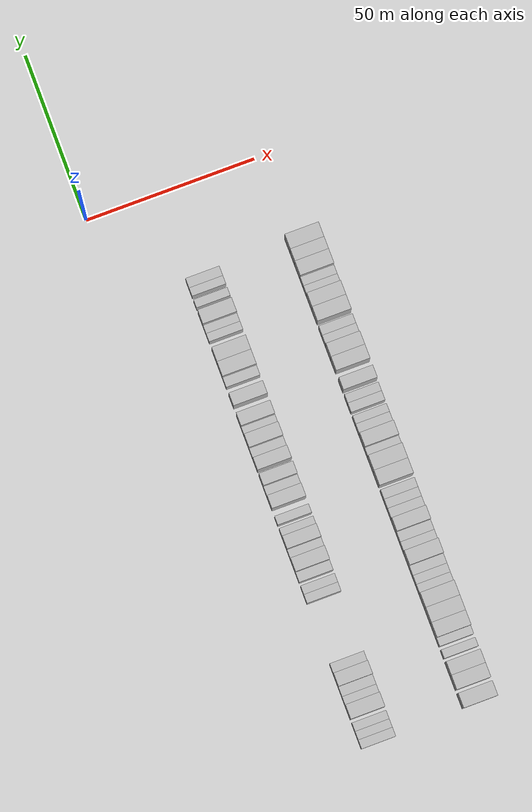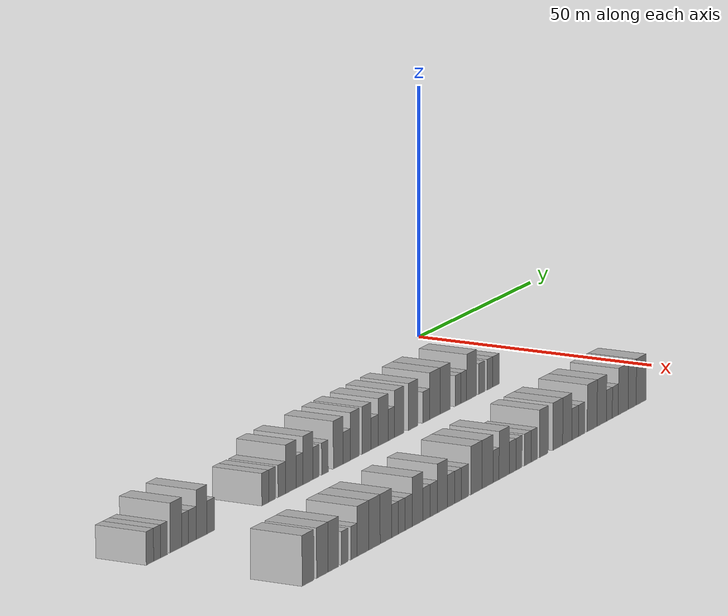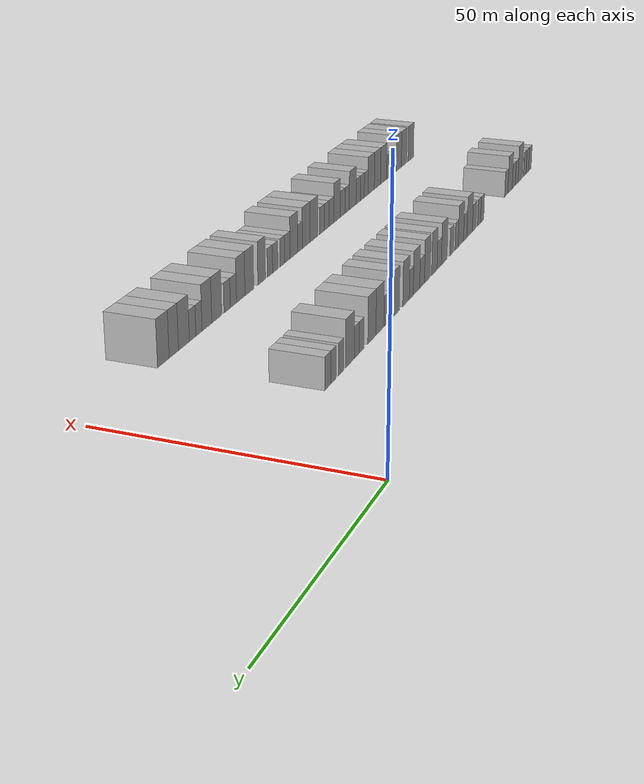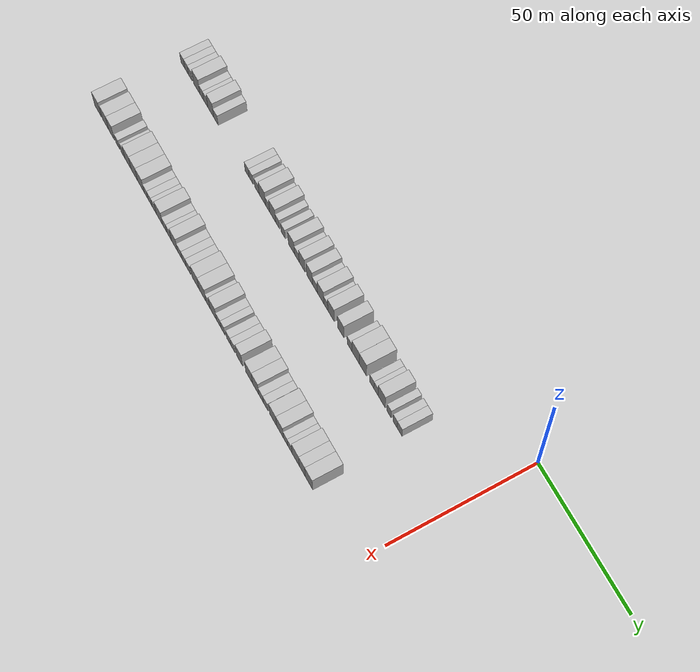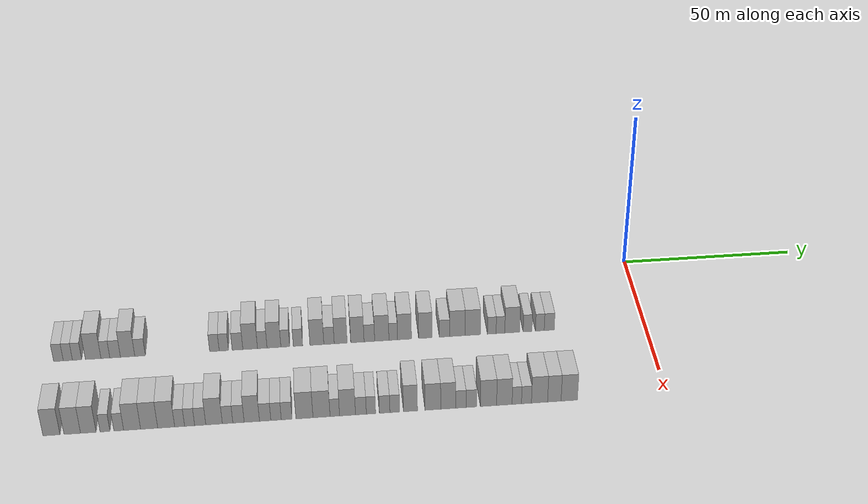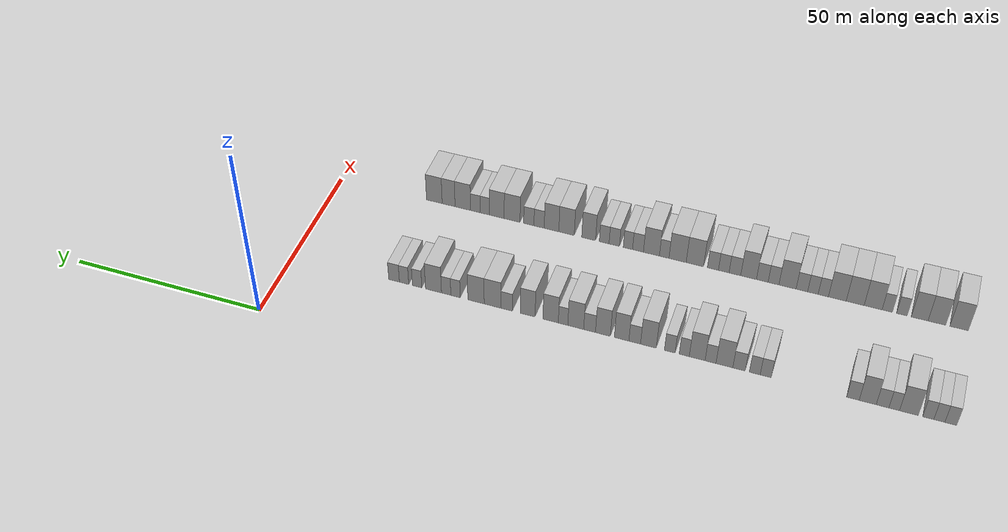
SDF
<sdf version="1.6">
 <world name="default">
  <model name="building_70">
   <static>1</static>
   <pose>25.0000 -163.4501 0 0.000000 0.000000 0.000000</pose>
   <link name="link">
    <pose>0 0 3.00 0 0 0</pose>
    <collision name="collision"><geometry><box><size>10.0000 2.6312 6.0000</size></box></geometry></collision>
    <visual name="visual">
     <cast_shadows>0</cast_shadows>
     <geometry><box><size>10.0000 2.6312 6.0000</size></box></geometry>
     <material>
      <script>
       <uri>model://HANNAS_wall/materials/scripts</uri>
       <uri>model://HANNAS_wall/materials/textures</uri>
       <name>vrc/HANNAS_wall</name>
      </script>
     </material>
    </visual>
   </link>
  </model>
  <model name="building_71">
   <static>1</static>
   <pose>25.0000 -160.8983 0 0.000000 0.000000 0.000000</pose>
   <link name="link">
    <pose>0 0 3.00 0 0 0</pose>
    <collision name="collision"><geometry><box><size>10.0000 2.4723 6.0000</size></box></geometry></collision>
    <visual name="visual">
     <cast_shadows>0</cast_shadows>
     <geometry><box><size>10.0000 2.4723 6.0000</size></box></geometry>
     <material>
      <script>
       <uri>model://HANNAS_wall/materials/scripts</uri>
       <uri>model://HANNAS_wall/materials/textures</uri>
       <name>vrc/HANNAS_wall</name>
      </script>
     </material>
    </visual>
   </link>
  </model>
  <model name="building_72">
   <static>1</static>
   <pose>25.0000 -158.4128 0 0.000000 0.000000 0.000000</pose>
   <link name="link">
    <pose>0 0 3.00 0 0 0</pose>
    <collision name="collision"><geometry><box><size>10.0000 2.4987 6.0000</size></box></geometry></collision>
    <visual name="visual">
     <cast_shadows>0</cast_shadows>
     <geometry><box><size>10.0000 2.4987 6.0000</size></box></geometry>
     <material>
      <script>
       <uri>model://HANNAS_wall/materials/scripts</uri>
       <uri>model://HANNAS_wall/materials/textures</uri>
       <name>vrc/HANNAS_wall</name>
      </script>
     </material>
    </visual>
   </link>
  </model>
  <model name="building_73">
   <static>1</static>
   <pose>25.0000 -154.0516 0 0.000000 0.000000 0.000000</pose>
   <link name="link">
    <pose>0 0 4.50 0 0 0</pose>
    <collision name="collision"><geometry><box><size>10.0000 4.2236 9.0000</size></box></geometry></collision>
    <visual name="visual">
     <cast_shadows>0</cast_shadows>
     <geometry><box><size>10.0000 4.2236 9.0000</size></box></geometry>
     <material>
      <script>
       <uri>model://HANNAS_wall/materials/scripts</uri>
       <uri>model://HANNAS_wall/materials/textures</uri>
       <name>vrc/HANNAS_wall</name>
      </script>
     </material>
    </visual>
   </link>
  </model>
  <model name="building_74">
   <static>1</static>
   <pose>25.0000 -150.7334 0 0.000000 0.000000 0.000000</pose>
   <link name="link">
    <pose>0 0 3.00 0 0 0</pose>
    <collision name="collision"><geometry><box><size>10.0000 2.4129 6.0000</size></box></geometry></collision>
    <visual name="visual">
     <cast_shadows>0</cast_shadows>
     <geometry><box><size>10.0000 2.4129 6.0000</size></box></geometry>
     <material>
      <script>
       <uri>model://HANNAS_wall/materials/scripts</uri>
       <uri>model://HANNAS_wall/materials/textures</uri>
       <name>vrc/HANNAS_wall</name>
      </script>
     </material>
    </visual>
   </link>
  </model>
  <model name="building_75">
   <static>1</static>
   <pose>25.0000 -148.0802 0 0.000000 0.000000 0.000000</pose>
   <link name="link">
    <pose>0 0 3.00 0 0 0</pose>
    <collision name="collision"><geometry><box><size>10.0000 2.8935 6.0000</size></box></geometry></collision>
    <visual name="visual">
     <cast_shadows>0</cast_shadows>
     <geometry><box><size>10.0000 2.8935 6.0000</size></box></geometry>
     <material>
      <script>
       <uri>model://HANNAS_wall/materials/scripts</uri>
       <uri>model://HANNAS_wall/materials/textures</uri>
       <name>vrc/HANNAS_wall</name>
      </script>
     </material>
    </visual>
   </link>
  </model>
  <model name="building_76">
   <static>1</static>
   <pose>25.0000 -144.6818 0 0.000000 0.000000 0.000000</pose>
   <link name="link">
    <pose>0 0 4.50 0 0 0</pose>
    <collision name="collision"><geometry><box><size>10.0000 3.9033 9.0000</size></box></geometry></collision>
    <visual name="visual">
     <cast_shadows>0</cast_shadows>
     <geometry><box><size>10.0000 3.9033 9.0000</size></box></geometry>
     <material>
      <script>
       <uri>model://HANNAS_wall/materials/scripts</uri>
       <uri>model://HANNAS_wall/materials/textures</uri>
       <name>vrc/HANNAS_wall</name>
      </script>
     </material>
    </visual>
   </link>
  </model>
  <model name="building_77">
   <static>1</static>
   <pose>25.0000 -141.2862 0 0.000000 0.000000 0.000000</pose>
   <link name="link">
    <pose>0 0 3.00 0 0 0</pose>
    <collision name="collision"><geometry><box><size>10.0000 2.8880 6.0000</size></box></geometry></collision>
    <visual name="visual">
     <cast_shadows>0</cast_shadows>
     <geometry><box><size>10.0000 2.8880 6.0000</size></box></geometry>
     <material>
      <script>
       <uri>model://HANNAS_wall/materials/scripts</uri>
       <uri>model://HANNAS_wall/materials/textures</uri>
       <name>vrc/HANNAS_wall</name>
      </script>
     </material>
    </visual>
   </link>
  </model>
  <model name="building_78">
   <static>1</static>
   <pose>25.0000 -120.9260 0 0.000000 0.000000 0.000000</pose>
   <link name="link">
    <pose>0 0 3.00 0 0 0</pose>
    <collision name="collision"><geometry><box><size>10.0000 2.6108 6.0000</size></box></geometry></collision>
    <visual name="visual">
     <cast_shadows>0</cast_shadows>
     <geometry><box><size>10.0000 2.6108 6.0000</size></box></geometry>
     <material>
      <script>
       <uri>model://HANNAS_wall/materials/scripts</uri>
       <uri>model://HANNAS_wall/materials/textures</uri>
       <name>vrc/HANNAS_wall</name>
      </script>
     </material>
    </visual>
   </link>
  </model>
  <model name="building_79">
   <static>1</static>
   <pose>25.0000 -118.3363 0 0.000000 0.000000 0.000000</pose>
   <link name="link">
    <pose>0 0 3.00 0 0 0</pose>
    <collision name="collision"><geometry><box><size>10.0000 2.5686 6.0000</size></box></geometry></collision>
    <visual name="visual">
     <cast_shadows>0</cast_shadows>
     <geometry><box><size>10.0000 2.5686 6.0000</size></box></geometry>
     <material>
      <script>
       <uri>model://HANNAS_wall/materials/scripts</uri>
       <uri>model://HANNAS_wall/materials/textures</uri>
       <name>vrc/HANNAS_wall</name>
      </script>
     </material>
    </visual>
   </link>
  </model>
  <model name="building_80">
   <static>1</static>
   <pose>25.0000 -114.5799 0 0.000000 0.000000 0.000000</pose>
   <link name="link">
    <pose>0 0 3.00 0 0 0</pose>
    <collision name="collision"><geometry><box><size>10.0000 2.9442 6.0000</size></box></geometry></collision>
    <visual name="visual">
     <cast_shadows>0</cast_shadows>
     <geometry><box><size>10.0000 2.9442 6.0000</size></box></geometry>
     <material>
      <script>
       <uri>model://HANNAS_wall/materials/scripts</uri>
       <uri>model://HANNAS_wall/materials/textures</uri>
       <name>vrc/HANNAS_wall</name>
      </script>
     </material>
    </visual>
   </link>
  </model>
  <model name="building_81">
   <static>1</static>
   <pose>25.0000 -111.0885 0 0.000000 0.000000 0.000000</pose>
   <link name="link">
    <pose>0 0 4.50 0 0 0</pose>
    <collision name="collision"><geometry><box><size>10.0000 4.0386 9.0000</size></box></geometry></collision>
    <visual name="visual">
     <cast_shadows>0</cast_shadows>
     <geometry><box><size>10.0000 4.0386 9.0000</size></box></geometry>
     <material>
      <script>
       <uri>model://HANNAS_wall/materials/scripts</uri>
       <uri>model://HANNAS_wall/materials/textures</uri>
       <name>vrc/HANNAS_wall</name>
      </script>
     </material>
    </visual>
   </link>
  </model>
  <model name="building_82">
   <static>1</static>
   <pose>25.0000 -107.7531 0 0.000000 0.000000 0.000000</pose>
   <link name="link">
    <pose>0 0 3.00 0 0 0</pose>
    <collision name="collision"><geometry><box><size>10.0000 2.6320 6.0000</size></box></geometry></collision>
    <visual name="visual">
     <cast_shadows>0</cast_shadows>
     <geometry><box><size>10.0000 2.6320 6.0000</size></box></geometry>
     <material>
      <script>
       <uri>model://HANNAS_wall/materials/scripts</uri>
       <uri>model://HANNAS_wall/materials/textures</uri>
       <name>vrc/HANNAS_wall</name>
      </script>
     </material>
    </visual>
   </link>
  </model>
  <model name="building_83">
   <static>1</static>
   <pose>25.0000 -104.5207 0 0.000000 0.000000 0.000000</pose>
   <link name="link">
    <pose>0 0 4.50 0 0 0</pose>
    <collision name="collision"><geometry><box><size>10.0000 3.8328 9.0000</size></box></geometry></collision>
    <visual name="visual">
     <cast_shadows>0</cast_shadows>
     <geometry><box><size>10.0000 3.8328 9.0000</size></box></geometry>
     <material>
      <script>
       <uri>model://HANNAS_wall/materials/scripts</uri>
       <uri>model://HANNAS_wall/materials/textures</uri>
       <name>vrc/HANNAS_wall</name>
      </script>
     </material>
    </visual>
   </link>
  </model>
  <model name="building_84">
   <static>1</static>
   <pose>25.0000 -101.3849 0 0.000000 0.000000 0.000000</pose>
   <link name="link">
    <pose>0 0 3.00 0 0 0</pose>
    <collision name="collision"><geometry><box><size>10.0000 2.4387 6.0000</size></box></geometry></collision>
    <visual name="visual">
     <cast_shadows>0</cast_shadows>
     <geometry><box><size>10.0000 2.4387 6.0000</size></box></geometry>
     <material>
      <script>
       <uri>model://HANNAS_wall/materials/scripts</uri>
       <uri>model://HANNAS_wall/materials/textures</uri>
       <name>vrc/HANNAS_wall</name>
      </script>
     </material>
    </visual>
   </link>
  </model>
  <model name="building_85">
   <static>1</static>
   <pose>25.0000 -97.8631 0 0.000000 0.000000 0.000000</pose>
   <link name="link">
    <pose>0 0 3.00 0 0 0</pose>
    <collision name="collision"><geometry><box><size>10.0000 2.6049 6.0000</size></box></geometry></collision>
    <visual name="visual">
     <cast_shadows>0</cast_shadows>
     <geometry><box><size>10.0000 2.6049 6.0000</size></box></geometry>
     <material>
      <script>
       <uri>model://HANNAS_wall/materials/scripts</uri>
       <uri>model://HANNAS_wall/materials/textures</uri>
       <name>vrc/HANNAS_wall</name>
      </script>
     </material>
    </visual>
   </link>
  </model>
  <model name="building_86">
   <static>1</static>
   <pose>25.0000 -92.6237 0 0.000000 0.000000 0.000000</pose>
   <link name="link">
    <pose>0 0 4.50 0 0 0</pose>
    <collision name="collision"><geometry><box><size>10.0000 3.8739 9.0000</size></box></geometry></collision>
    <visual name="visual">
     <cast_shadows>0</cast_shadows>
     <geometry><box><size>10.0000 3.8739 9.0000</size></box></geometry>
     <material>
      <script>
       <uri>model://HANNAS_wall/materials/scripts</uri>
       <uri>model://HANNAS_wall/materials/textures</uri>
       <name>vrc/HANNAS_wall</name>
      </script>
     </material>
    </visual>
   </link>
  </model>
  <model name="building_87">
   <static>1</static>
   <pose>25.0000 -89.2435 0 0.000000 0.000000 0.000000</pose>
   <link name="link">
    <pose>0 0 3.00 0 0 0</pose>
    <collision name="collision"><geometry><box><size>10.0000 2.8864 6.0000</size></box></geometry></collision>
    <visual name="visual">
     <cast_shadows>0</cast_shadows>
     <geometry><box><size>10.0000 2.8864 6.0000</size></box></geometry>
     <material>
      <script>
       <uri>model://HANNAS_wall/materials/scripts</uri>
       <uri>model://HANNAS_wall/materials/textures</uri>
       <name>vrc/HANNAS_wall</name>
      </script>
     </material>
    </visual>
   </link>
  </model>
  <model name="building_88">
   <static>1</static>
   <pose>25.0000 -85.9979 0 0.000000 0.000000 0.000000</pose>
   <link name="link">
    <pose>0 0 4.50 0 0 0</pose>
    <collision name="collision"><geometry><box><size>10.0000 3.6048 9.0000</size></box></geometry></collision>
    <visual name="visual">
     <cast_shadows>0</cast_shadows>
     <geometry><box><size>10.0000 3.6048 9.0000</size></box></geometry>
     <material>
      <script>
       <uri>model://HANNAS_wall/materials/scripts</uri>
       <uri>model://HANNAS_wall/materials/textures</uri>
       <name>vrc/HANNAS_wall</name>
      </script>
     </material>
    </visual>
   </link>
  </model>
  <model name="building_89">
   <static>1</static>
   <pose>25.0000 -81.3440 0 0.000000 0.000000 0.000000</pose>
   <link name="link">
    <pose>0 0 4.50 0 0 0</pose>
    <collision name="collision"><geometry><box><size>10.0000 3.7031 9.0000</size></box></geometry></collision>
    <visual name="visual">
     <cast_shadows>0</cast_shadows>
     <geometry><box><size>10.0000 3.7031 9.0000</size></box></geometry>
     <material>
      <script>
       <uri>model://HANNAS_wall/materials/scripts</uri>
       <uri>model://HANNAS_wall/materials/textures</uri>
       <name>vrc/HANNAS_wall</name>
      </script>
     </material>
    </visual>
   </link>
  </model>
  <model name="building_90">
   <static>1</static>
   <pose>25.0000 -78.0112 0 0.000000 0.000000 0.000000</pose>
   <link name="link">
    <pose>0 0 3.00 0 0 0</pose>
    <collision name="collision"><geometry><box><size>10.0000 2.9624 6.0000</size></box></geometry></collision>
    <visual name="visual">
     <cast_shadows>0</cast_shadows>
     <geometry><box><size>10.0000 2.9624 6.0000</size></box></geometry>
     <material>
      <script>
       <uri>model://HANNAS_wall/materials/scripts</uri>
       <uri>model://HANNAS_wall/materials/textures</uri>
       <name>vrc/HANNAS_wall</name>
      </script>
     </material>
    </visual>
   </link>
  </model>
  <model name="building_91">
   <static>1</static>
   <pose>25.0000 -74.5296 0 0.000000 0.000000 0.000000</pose>
   <link name="link">
    <pose>0 0 4.50 0 0 0</pose>
    <collision name="collision"><geometry><box><size>10.0000 4.0008 9.0000</size></box></geometry></collision>
    <visual name="visual">
     <cast_shadows>0</cast_shadows>
     <geometry><box><size>10.0000 4.0008 9.0000</size></box></geometry>
     <material>
      <script>
       <uri>model://HANNAS_wall/materials/scripts</uri>
       <uri>model://HANNAS_wall/materials/textures</uri>
       <name>vrc/HANNAS_wall</name>
      </script>
     </material>
    </visual>
   </link>
  </model>
  <model name="building_92">
   <static>1</static>
   <pose>25.0000 -71.3264 0 0.000000 0.000000 0.000000</pose>
   <link name="link">
    <pose>0 0 3.00 0 0 0</pose>
    <collision name="collision"><geometry><box><size>10.0000 2.4057 6.0000</size></box></geometry></collision>
    <visual name="visual">
     <cast_shadows>0</cast_shadows>
     <geometry><box><size>10.0000 2.4057 6.0000</size></box></geometry>
     <material>
      <script>
       <uri>model://HANNAS_wall/materials/scripts</uri>
       <uri>model://HANNAS_wall/materials/textures</uri>
       <name>vrc/HANNAS_wall</name>
      </script>
     </material>
    </visual>
   </link>
  </model>
  <model name="building_93">
   <static>1</static>
   <pose>25.0000 -68.1665 0 0.000000 0.000000 0.000000</pose>
   <link name="link">
    <pose>0 0 4.50 0 0 0</pose>
    <collision name="collision"><geometry><box><size>10.0000 3.9141 9.0000</size></box></geometry></collision>
    <visual name="visual">
     <cast_shadows>0</cast_shadows>
     <geometry><box><size>10.0000 3.9141 9.0000</size></box></geometry>
     <material>
      <script>
       <uri>model://HANNAS_wall/materials/scripts</uri>
       <uri>model://HANNAS_wall/materials/textures</uri>
       <name>vrc/HANNAS_wall</name>
      </script>
     </material>
    </visual>
   </link>
  </model>
  <model name="building_94">
   <static>1</static>
   <pose>25.0000 -62.3011 0 0.000000 0.000000 0.000000</pose>
   <link name="link">
    <pose>0 0 4.50 0 0 0</pose>
    <collision name="collision"><geometry><box><size>10.0000 3.8167 9.0000</size></box></geometry></collision>
    <visual name="visual">
     <cast_shadows>0</cast_shadows>
     <geometry><box><size>10.0000 3.8167 9.0000</size></box></geometry>
     <material>
      <script>
       <uri>model://HANNAS_wall/materials/scripts</uri>
       <uri>model://HANNAS_wall/materials/textures</uri>
       <name>vrc/HANNAS_wall</name>
      </script>
     </material>
    </visual>
   </link>
  </model>
  <model name="building_95">
   <static>1</static>
   <pose>25.0000 -56.9214 0 0.000000 0.000000 0.000000</pose>
   <link name="link">
    <pose>0 0 3.00 0 0 0</pose>
    <collision name="collision"><geometry><box><size>10.0000 2.9428 6.0000</size></box></geometry></collision>
    <visual name="visual">
     <cast_shadows>0</cast_shadows>
     <geometry><box><size>10.0000 2.9428 6.0000</size></box></geometry>
     <material>
      <script>
       <uri>model://HANNAS_wall/materials/scripts</uri>
       <uri>model://HANNAS_wall/materials/textures</uri>
       <name>vrc/HANNAS_wall</name>
      </script>
     </material>
    </visual>
   </link>
  </model>
  <model name="building_96">
   <static>1</static>
   <pose>25.0000 -53.2691 0 0.000000 0.000000 0.000000</pose>
   <link name="link">
    <pose>0 0 4.50 0 0 0</pose>
    <collision name="collision"><geometry><box><size>10.0000 4.3619 9.0000</size></box></geometry></collision>
    <visual name="visual">
     <cast_shadows>0</cast_shadows>
     <geometry><box><size>10.0000 4.3619 9.0000</size></box></geometry>
     <material>
      <script>
       <uri>model://HANNAS_wall/materials/scripts</uri>
       <uri>model://HANNAS_wall/materials/textures</uri>
       <name>vrc/HANNAS_wall</name>
      </script>
     </material>
    </visual>
   </link>
  </model>
  <model name="building_97">
   <static>1</static>
   <pose>25.0000 -48.9519 0 0.000000 0.000000 0.000000</pose>
   <link name="link">
    <pose>0 0 4.50 0 0 0</pose>
    <collision name="collision"><geometry><box><size>10.0000 4.2724 9.0000</size></box></geometry></collision>
    <visual name="visual">
     <cast_shadows>0</cast_shadows>
     <geometry><box><size>10.0000 4.2724 9.0000</size></box></geometry>
     <material>
      <script>
       <uri>model://HANNAS_wall/materials/scripts</uri>
       <uri>model://HANNAS_wall/materials/textures</uri>
       <name>vrc/HANNAS_wall</name>
      </script>
     </material>
    </visual>
   </link>
  </model>
  <model name="building_98">
   <static>1</static>
   <pose>25.0000 -43.5895 0 0.000000 0.000000 0.000000</pose>
   <link name="link">
    <pose>0 0 3.00 0 0 0</pose>
    <collision name="collision"><geometry><box><size>10.0000 2.4524 6.0000</size></box></geometry></collision>
    <visual name="visual">
     <cast_shadows>0</cast_shadows>
     <geometry><box><size>10.0000 2.4524 6.0000</size></box></geometry>
     <material>
      <script>
       <uri>model://HANNAS_wall/materials/scripts</uri>
       <uri>model://HANNAS_wall/materials/textures</uri>
       <name>vrc/HANNAS_wall</name>
      </script>
     </material>
    </visual>
   </link>
  </model>
  <model name="building_99">
   <static>1</static>
   <pose>25.0000 -41.1310 0 0.000000 0.000000 0.000000</pose>
   <link name="link">
    <pose>0 0 3.00 0 0 0</pose>
    <collision name="collision"><geometry><box><size>10.0000 2.4646 6.0000</size></box></geometry></collision>
    <visual name="visual">
     <cast_shadows>0</cast_shadows>
     <geometry><box><size>10.0000 2.4646 6.0000</size></box></geometry>
     <material>
      <script>
       <uri>model://HANNAS_wall/materials/scripts</uri>
       <uri>model://HANNAS_wall/materials/textures</uri>
       <name>vrc/HANNAS_wall</name>
      </script>
     </material>
    </visual>
   </link>
  </model>
  <model name="building_100">
   <static>1</static>
   <pose>25.0000 -37.7941 0 0.000000 0.000000 0.000000</pose>
   <link name="link">
    <pose>0 0 4.50 0 0 0</pose>
    <collision name="collision"><geometry><box><size>10.0000 4.2091 9.0000</size></box></geometry></collision>
    <visual name="visual">
     <cast_shadows>0</cast_shadows>
     <geometry><box><size>10.0000 4.2091 9.0000</size></box></geometry>
     <material>
      <script>
       <uri>model://HANNAS_wall/materials/scripts</uri>
       <uri>model://HANNAS_wall/materials/textures</uri>
       <name>vrc/HANNAS_wall</name>
      </script>
     </material>
    </visual>
   </link>
  </model>
  <model name="building_101">
   <static>1</static>
   <pose>25.0000 -33.4456 0 0.000000 0.000000 0.000000</pose>
   <link name="link">
    <pose>0 0 3.00 0 0 0</pose>
    <collision name="collision"><geometry><box><size>10.0000 2.4879 6.0000</size></box></geometry></collision>
    <visual name="visual">
     <cast_shadows>0</cast_shadows>
     <geometry><box><size>10.0000 2.4879 6.0000</size></box></geometry>
     <material>
      <script>
       <uri>model://HANNAS_wall/materials/scripts</uri>
       <uri>model://HANNAS_wall/materials/textures</uri>
       <name>vrc/HANNAS_wall</name>
      </script>
     </material>
    </visual>
   </link>
  </model>
  <model name="building_102">
   <static>1</static>
   <pose>25.0000 -29.9564 0 0.000000 0.000000 0.000000</pose>
   <link name="link">
    <pose>0 0 3.00 0 0 0</pose>
    <collision name="collision"><geometry><box><size>10.0000 2.4905 6.0000</size></box></geometry></collision>
    <visual name="visual">
     <cast_shadows>0</cast_shadows>
     <geometry><box><size>10.0000 2.4905 6.0000</size></box></geometry>
     <material>
      <script>
       <uri>model://HANNAS_wall/materials/scripts</uri>
       <uri>model://HANNAS_wall/materials/textures</uri>
       <name>vrc/HANNAS_wall</name>
      </script>
     </material>
    </visual>
   </link>
  </model>
  <model name="building_103">
   <static>1</static>
   <pose>25.0000 -27.2843 0 0.000000 0.000000 0.000000</pose>
   <link name="link">
    <pose>0 0 3.00 0 0 0</pose>
    <collision name="collision"><geometry><box><size>10.0000 2.8536 6.0000</size></box></geometry></collision>
    <visual name="visual">
     <cast_shadows>0</cast_shadows>
     <geometry><box><size>10.0000 2.8536 6.0000</size></box></geometry>
     <material>
      <script>
       <uri>model://HANNAS_wall/materials/scripts</uri>
       <uri>model://HANNAS_wall/materials/textures</uri>
       <name>vrc/HANNAS_wall</name>
      </script>
     </material>
    </visual>
   </link>
  </model>
  <model name="building_303">
   <static>1</static>
   <pose>55.0000 -161.9447 0 0.000000 0.000000 0.000000</pose>
   <link name="link">
    <pose>0 0 4.50 0 0 0</pose>
    <collision name="collision"><geometry><box><size>10.0000 4.3427 9.0000</size></box></geometry></collision>
    <visual name="visual">
     <cast_shadows>0</cast_shadows>
     <geometry><box><size>10.0000 4.3427 9.0000</size></box></geometry>
     <material>
      <script>
       <uri>model://HANNAS_wall/materials/scripts</uri>
       <uri>model://HANNAS_wall/materials/textures</uri>
       <name>vrc/HANNAS_wall</name>
      </script>
     </material>
    </visual>
   </link>
  </model>
  <model name="building_304">
   <static>1</static>
   <pose>55.0000 -156.6554 0 0.000000 0.000000 0.000000</pose>
   <link name="link">
    <pose>0 0 4.50 0 0 0</pose>
    <collision name="collision"><geometry><box><size>10.0000 4.2358 9.0000</size></box></geometry></collision>
    <visual name="visual">
     <cast_shadows>0</cast_shadows>
     <geometry><box><size>10.0000 4.2358 9.0000</size></box></geometry>
     <material>
      <script>
       <uri>model://HANNAS_wall/materials/scripts</uri>
       <uri>model://HANNAS_wall/materials/textures</uri>
       <name>vrc/HANNAS_wall</name>
      </script>
     </material>
    </visual>
   </link>
  </model>
  <model name="building_305">
   <static>1</static>
   <pose>55.0000 -152.5468 0 0.000000 0.000000 0.000000</pose>
   <link name="link">
    <pose>0 0 4.50 0 0 0</pose>
    <collision name="collision"><geometry><box><size>10.0000 3.9815 9.0000</size></box></geometry></collision>
    <visual name="visual">
     <cast_shadows>0</cast_shadows>
     <geometry><box><size>10.0000 3.9815 9.0000</size></box></geometry>
     <material>
      <script>
       <uri>model://HANNAS_wall/materials/scripts</uri>
       <uri>model://HANNAS_wall/materials/textures</uri>
       <name>vrc/HANNAS_wall</name>
      </script>
     </material>
    </visual>
   </link>
  </model>
  <model name="building_306">
   <static>1</static>
   <pose>55.0000 -148.2824 0 0.000000 0.000000 0.000000</pose>
   <link name="link">
    <pose>0 0 3.00 0 0 0</pose>
    <collision name="collision"><geometry><box><size>10.0000 2.5473 6.0000</size></box></geometry></collision>
    <visual name="visual">
     <cast_shadows>0</cast_shadows>
     <geometry><box><size>10.0000 2.5473 6.0000</size></box></geometry>
     <material>
      <script>
       <uri>model://HANNAS_wall/materials/scripts</uri>
       <uri>model://HANNAS_wall/materials/textures</uri>
       <name>vrc/HANNAS_wall</name>
      </script>
     </material>
    </visual>
   </link>
  </model>
  <model name="building_307">
   <static>1</static>
   <pose>55.0000 -144.7574 0 0.000000 0.000000 0.000000</pose>
   <link name="link">
    <pose>0 0 3.00 0 0 0</pose>
    <collision name="collision"><geometry><box><size>10.0000 2.5027 6.0000</size></box></geometry></collision>
    <visual name="visual">
     <cast_shadows>0</cast_shadows>
     <geometry><box><size>10.0000 2.5027 6.0000</size></box></geometry>
     <material>
      <script>
       <uri>model://HANNAS_wall/materials/scripts</uri>
       <uri>model://HANNAS_wall/materials/textures</uri>
       <name>vrc/HANNAS_wall</name>
      </script>
     </material>
    </visual>
   </link>
  </model>
  <model name="building_308">
   <static>1</static>
   <pose>55.0000 -141.3253 0 0.000000 0.000000 0.000000</pose>
   <link name="link">
    <pose>0 0 4.50 0 0 0</pose>
    <collision name="collision"><geometry><box><size>10.0000 4.3617 9.0000</size></box></geometry></collision>
    <visual name="visual">
     <cast_shadows>0</cast_shadows>
     <geometry><box><size>10.0000 4.3617 9.0000</size></box></geometry>
     <material>
      <script>
       <uri>model://HANNAS_wall/materials/scripts</uri>
       <uri>model://HANNAS_wall/materials/textures</uri>
       <name>vrc/HANNAS_wall</name>
      </script>
     </material>
    </visual>
   </link>
  </model>
  <model name="building_309">
   <static>1</static>
   <pose>55.0000 -136.9495 0 0.000000 0.000000 0.000000</pose>
   <link name="link">
    <pose>0 0 4.50 0 0 0</pose>
    <collision name="collision"><geometry><box><size>10.0000 4.3899 9.0000</size></box></geometry></collision>
    <visual name="visual">
     <cast_shadows>0</cast_shadows>
     <geometry><box><size>10.0000 4.3899 9.0000</size></box></geometry>
     <material>
      <script>
       <uri>model://HANNAS_wall/materials/scripts</uri>
       <uri>model://HANNAS_wall/materials/textures</uri>
       <name>vrc/HANNAS_wall</name>
      </script>
     </material>
    </visual>
   </link>
  </model>
  <model name="building_310">
   <static>1</static>
   <pose>55.0000 -132.5656 0 0.000000 0.000000 0.000000</pose>
   <link name="link">
    <pose>0 0 4.50 0 0 0</pose>
    <collision name="collision"><geometry><box><size>10.0000 4.3778 9.0000</size></box></geometry></collision>
    <visual name="visual">
     <cast_shadows>0</cast_shadows>
     <geometry><box><size>10.0000 4.3778 9.0000</size></box></geometry>
     <material>
      <script>
       <uri>model://HANNAS_wall/materials/scripts</uri>
       <uri>model://HANNAS_wall/materials/textures</uri>
       <name>vrc/HANNAS_wall</name>
      </script>
     </material>
    </visual>
   </link>
  </model>
  <model name="building_311">
   <static>1</static>
   <pose>55.0000 -129.0982 0 0.000000 0.000000 0.000000</pose>
   <link name="link">
    <pose>0 0 3.00 0 0 0</pose>
    <collision name="collision"><geometry><box><size>10.0000 2.5571 6.0000</size></box></geometry></collision>
    <visual name="visual">
     <cast_shadows>0</cast_shadows>
     <geometry><box><size>10.0000 2.5571 6.0000</size></box></geometry>
     <material>
      <script>
       <uri>model://HANNAS_wall/materials/scripts</uri>
       <uri>model://HANNAS_wall/materials/textures</uri>
       <name>vrc/HANNAS_wall</name>
      </script>
     </material>
    </visual>
   </link>
  </model>
  <model name="building_312">
   <static>1</static>
   <pose>55.0000 -126.5168 0 0.000000 0.000000 0.000000</pose>
   <link name="link">
    <pose>0 0 3.00 0 0 0</pose>
    <collision name="collision"><geometry><box><size>10.0000 2.6057 6.0000</size></box></geometry></collision>
    <visual name="visual">
     <cast_shadows>0</cast_shadows>
     <geometry><box><size>10.0000 2.6057 6.0000</size></box></geometry>
     <material>
      <script>
       <uri>model://HANNAS_wall/materials/scripts</uri>
       <uri>model://HANNAS_wall/materials/textures</uri>
       <name>vrc/HANNAS_wall</name>
      </script>
     </material>
    </visual>
   </link>
  </model>
  <model name="building_313">
   <static>1</static>
   <pose>55.0000 -123.7781 0 0.000000 0.000000 0.000000</pose>
   <link name="link">
    <pose>0 0 3.00 0 0 0</pose>
    <collision name="collision"><geometry><box><size>10.0000 2.8716 6.0000</size></box></geometry></collision>
    <visual name="visual">
     <cast_shadows>0</cast_shadows>
     <geometry><box><size>10.0000 2.8716 6.0000</size></box></geometry>
     <material>
      <script>
       <uri>model://HANNAS_wall/materials/scripts</uri>
       <uri>model://HANNAS_wall/materials/textures</uri>
       <name>vrc/HANNAS_wall</name>
      </script>
     </material>
    </visual>
   </link>
  </model>
  <model name="building_314">
   <static>1</static>
   <pose>55.0000 -120.1942 0 0.000000 0.000000 0.000000</pose>
   <link name="link">
    <pose>0 0 4.50 0 0 0</pose>
    <collision name="collision"><geometry><box><size>10.0000 4.2961 9.0000</size></box></geometry></collision>
    <visual name="visual">
     <cast_shadows>0</cast_shadows>
     <geometry><box><size>10.0000 4.2961 9.0000</size></box></geometry>
     <material>
      <script>
       <uri>model://HANNAS_wall/materials/scripts</uri>
       <uri>model://HANNAS_wall/materials/textures</uri>
       <name>vrc/HANNAS_wall</name>
      </script>
     </material>
    </visual>
   </link>
  </model>
  <model name="building_315">
   <static>1</static>
   <pose>55.0000 -116.6873 0 0.000000 0.000000 0.000000</pose>
   <link name="link">
    <pose>0 0 3.00 0 0 0</pose>
    <collision name="collision"><geometry><box><size>10.0000 2.7178 6.0000</size></box></geometry></collision>
    <visual name="visual">
     <cast_shadows>0</cast_shadows>
     <geometry><box><size>10.0000 2.7178 6.0000</size></box></geometry>
     <material>
      <script>
       <uri>model://HANNAS_wall/materials/scripts</uri>
       <uri>model://HANNAS_wall/materials/textures</uri>
       <name>vrc/HANNAS_wall</name>
      </script>
     </material>
    </visual>
   </link>
  </model>
  <model name="building_316">
   <static>1</static>
   <pose>55.0000 -113.8598 0 0.000000 0.000000 0.000000</pose>
   <link name="link">
    <pose>0 0 3.00 0 0 0</pose>
    <collision name="collision"><geometry><box><size>10.0000 2.9372 6.0000</size></box></geometry></collision>
    <visual name="visual">
     <cast_shadows>0</cast_shadows>
     <geometry><box><size>10.0000 2.9372 6.0000</size></box></geometry>
     <material>
      <script>
       <uri>model://HANNAS_wall/materials/scripts</uri>
       <uri>model://HANNAS_wall/materials/textures</uri>
       <name>vrc/HANNAS_wall</name>
      </script>
     </material>
    </visual>
   </link>
  </model>
  <model name="building_317">
   <static>1</static>
   <pose>55.0000 -110.3966 0 0.000000 0.000000 0.000000</pose>
   <link name="link">
    <pose>0 0 4.50 0 0 0</pose>
    <collision name="collision"><geometry><box><size>10.0000 3.9893 9.0000</size></box></geometry></collision>
    <visual name="visual">
     <cast_shadows>0</cast_shadows>
     <geometry><box><size>10.0000 3.9893 9.0000</size></box></geometry>
     <material>
      <script>
       <uri>model://HANNAS_wall/materials/scripts</uri>
       <uri>model://HANNAS_wall/materials/textures</uri>
       <name>vrc/HANNAS_wall</name>
      </script>
     </material>
    </visual>
   </link>
  </model>
  <model name="building_318">
   <static>1</static>
   <pose>55.0000 -106.9225 0 0.000000 0.000000 0.000000</pose>
   <link name="link">
    <pose>0 0 3.00 0 0 0</pose>
    <collision name="collision"><geometry><box><size>10.0000 2.9588 6.0000</size></box></geometry></collision>
    <visual name="visual">
     <cast_shadows>0</cast_shadows>
     <geometry><box><size>10.0000 2.9588 6.0000</size></box></geometry>
     <material>
      <script>
       <uri>model://HANNAS_wall/materials/scripts</uri>
       <uri>model://HANNAS_wall/materials/textures</uri>
       <name>vrc/HANNAS_wall</name>
      </script>
     </material>
    </visual>
   </link>
  </model>
  <model name="building_319">
   <static>1</static>
   <pose>55.0000 -104.0861 0 0.000000 0.000000 0.000000</pose>
   <link name="link">
    <pose>0 0 3.00 0 0 0</pose>
    <collision name="collision"><geometry><box><size>10.0000 2.7139 6.0000</size></box></geometry></collision>
    <visual name="visual">
     <cast_shadows>0</cast_shadows>
     <geometry><box><size>10.0000 2.7139 6.0000</size></box></geometry>
     <material>
      <script>
       <uri>model://HANNAS_wall/materials/scripts</uri>
       <uri>model://HANNAS_wall/materials/textures</uri>
       <name>vrc/HANNAS_wall</name>
      </script>
     </material>
    </visual>
   </link>
  </model>
  <model name="building_320">
   <static>1</static>
   <pose>55.0000 -101.3181 0 0.000000 0.000000 0.000000</pose>
   <link name="link">
    <pose>0 0 3.00 0 0 0</pose>
    <collision name="collision"><geometry><box><size>10.0000 2.8221 6.0000</size></box></geometry></collision>
    <visual name="visual">
     <cast_shadows>0</cast_shadows>
     <geometry><box><size>10.0000 2.8221 6.0000</size></box></geometry>
     <material>
      <script>
       <uri>model://HANNAS_wall/materials/scripts</uri>
       <uri>model://HANNAS_wall/materials/textures</uri>
       <name>vrc/HANNAS_wall</name>
      </script>
     </material>
    </visual>
   </link>
  </model>
  <model name="building_321">
   <static>1</static>
   <pose>55.0000 -96.6736 0 0.000000 0.000000 0.000000</pose>
   <link name="link">
    <pose>0 0 4.50 0 0 0</pose>
    <collision name="collision"><geometry><box><size>10.0000 4.4671 9.0000</size></box></geometry></collision>
    <visual name="visual">
     <cast_shadows>0</cast_shadows>
     <geometry><box><size>10.0000 4.4671 9.0000</size></box></geometry>
     <material>
      <script>
       <uri>model://HANNAS_wall/materials/scripts</uri>
       <uri>model://HANNAS_wall/materials/textures</uri>
       <name>vrc/HANNAS_wall</name>
      </script>
     </material>
    </visual>
   </link>
  </model>
  <model name="building_322">
   <static>1</static>
   <pose>55.0000 -92.2056 0 0.000000 0.000000 0.000000</pose>
   <link name="link">
    <pose>0 0 4.50 0 0 0</pose>
    <collision name="collision"><geometry><box><size>10.0000 4.4689 9.0000</size></box></geometry></collision>
    <visual name="visual">
     <cast_shadows>0</cast_shadows>
     <geometry><box><size>10.0000 4.4689 9.0000</size></box></geometry>
     <material>
      <script>
       <uri>model://HANNAS_wall/materials/scripts</uri>
       <uri>model://HANNAS_wall/materials/textures</uri>
       <name>vrc/HANNAS_wall</name>
      </script>
     </material>
    </visual>
   </link>
  </model>
  <model name="building_323">
   <static>1</static>
   <pose>55.0000 -88.7280 0 0.000000 0.000000 0.000000</pose>
   <link name="link">
    <pose>0 0 3.00 0 0 0</pose>
    <collision name="collision"><geometry><box><size>10.0000 2.4862 6.0000</size></box></geometry></collision>
    <visual name="visual">
     <cast_shadows>0</cast_shadows>
     <geometry><box><size>10.0000 2.4862 6.0000</size></box></geometry>
     <material>
      <script>
       <uri>model://HANNAS_wall/materials/scripts</uri>
       <uri>model://HANNAS_wall/materials/textures</uri>
       <name>vrc/HANNAS_wall</name>
      </script>
     </material>
    </visual>
   </link>
  </model>
  <model name="building_324">
   <static>1</static>
   <pose>55.0000 -85.3897 0 0.000000 0.000000 0.000000</pose>
   <link name="link">
    <pose>0 0 4.50 0 0 0</pose>
    <collision name="collision"><geometry><box><size>10.0000 4.1905 9.0000</size></box></geometry></collision>
    <visual name="visual">
     <cast_shadows>0</cast_shadows>
     <geometry><box><size>10.0000 4.1905 9.0000</size></box></geometry>
     <material>
      <script>
       <uri>model://HANNAS_wall/materials/scripts</uri>
       <uri>model://HANNAS_wall/materials/textures</uri>
       <name>vrc/HANNAS_wall</name>
      </script>
     </material>
    </visual>
   </link>
  </model>
  <model name="building_325">
   <static>1</static>
   <pose>55.0000 -81.8666 0 0.000000 0.000000 0.000000</pose>
   <link name="link">
    <pose>0 0 3.00 0 0 0</pose>
    <collision name="collision"><geometry><box><size>10.0000 2.8556 6.0000</size></box></geometry></collision>
    <visual name="visual">
     <cast_shadows>0</cast_shadows>
     <geometry><box><size>10.0000 2.8556 6.0000</size></box></geometry>
     <material>
      <script>
       <uri>model://HANNAS_wall/materials/scripts</uri>
       <uri>model://HANNAS_wall/materials/textures</uri>
       <name>vrc/HANNAS_wall</name>
      </script>
     </material>
    </visual>
   </link>
  </model>
  <model name="building_326">
   <static>1</static>
   <pose>55.0000 -79.2180 0 0.000000 0.000000 0.000000</pose>
   <link name="link">
    <pose>0 0 3.00 0 0 0</pose>
    <collision name="collision"><geometry><box><size>10.0000 2.4418 6.0000</size></box></geometry></collision>
    <visual name="visual">
     <cast_shadows>0</cast_shadows>
     <geometry><box><size>10.0000 2.4418 6.0000</size></box></geometry>
     <material>
      <script>
       <uri>model://HANNAS_wall/materials/scripts</uri>
       <uri>model://HANNAS_wall/materials/textures</uri>
       <name>vrc/HANNAS_wall</name>
      </script>
     </material>
    </visual>
   </link>
  </model>
  <model name="building_327">
   <static>1</static>
   <pose>55.0000 -75.6124 0 0.000000 0.000000 0.000000</pose>
   <link name="link">
    <pose>0 0 3.00 0 0 0</pose>
    <collision name="collision"><geometry><box><size>10.0000 2.7693 6.0000</size></box></geometry></collision>
    <visual name="visual">
     <cast_shadows>0</cast_shadows>
     <geometry><box><size>10.0000 2.7693 6.0000</size></box></geometry>
     <material>
      <script>
       <uri>model://HANNAS_wall/materials/scripts</uri>
       <uri>model://HANNAS_wall/materials/textures</uri>
       <name>vrc/HANNAS_wall</name>
      </script>
     </material>
    </visual>
   </link>
  </model>
  <model name="building_328">
   <static>1</static>
   <pose>55.0000 -72.9378 0 0.000000 0.000000 0.000000</pose>
   <link name="link">
    <pose>0 0 3.00 0 0 0</pose>
    <collision name="collision"><geometry><box><size>10.0000 2.5798 6.0000</size></box></geometry></collision>
    <visual name="visual">
     <cast_shadows>0</cast_shadows>
     <geometry><box><size>10.0000 2.5798 6.0000</size></box></geometry>
     <material>
      <script>
       <uri>model://HANNAS_wall/materials/scripts</uri>
       <uri>model://HANNAS_wall/materials/textures</uri>
       <name>vrc/HANNAS_wall</name>
      </script>
     </material>
    </visual>
   </link>
  </model>
  <model name="building_329">
   <static>1</static>
   <pose>55.0000 -68.7958 0 0.000000 0.000000 0.000000</pose>
   <link name="link">
    <pose>0 0 4.50 0 0 0</pose>
    <collision name="collision"><geometry><box><size>10.0000 3.7042 9.0000</size></box></geometry></collision>
    <visual name="visual">
     <cast_shadows>0</cast_shadows>
     <geometry><box><size>10.0000 3.7042 9.0000</size></box></geometry>
     <material>
      <script>
       <uri>model://HANNAS_wall/materials/scripts</uri>
       <uri>model://HANNAS_wall/materials/textures</uri>
       <name>vrc/HANNAS_wall</name>
      </script>
     </material>
    </visual>
   </link>
  </model>
  <model name="building_330">
   <static>1</static>
   <pose>55.0000 -62.8660 0 0.000000 0.000000 0.000000</pose>
   <link name="link">
    <pose>0 0 4.50 0 0 0</pose>
    <collision name="collision"><geometry><box><size>10.0000 4.1554 9.0000</size></box></geometry></collision>
    <visual name="visual">
     <cast_shadows>0</cast_shadows>
     <geometry><box><size>10.0000 4.1554 9.0000</size></box></geometry>
     <material>
      <script>
       <uri>model://HANNAS_wall/materials/scripts</uri>
       <uri>model://HANNAS_wall/materials/textures</uri>
       <name>vrc/HANNAS_wall</name>
      </script>
     </material>
    </visual>
   </link>
  </model>
  <model name="building_331">
   <static>1</static>
   <pose>55.0000 -58.8127 0 0.000000 0.000000 0.000000</pose>
   <link name="link">
    <pose>0 0 4.50 0 0 0</pose>
    <collision name="collision"><geometry><box><size>10.0000 3.9512 9.0000</size></box></geometry></collision>
    <visual name="visual">
     <cast_shadows>0</cast_shadows>
     <geometry><box><size>10.0000 3.9512 9.0000</size></box></geometry>
     <material>
      <script>
       <uri>model://HANNAS_wall/materials/scripts</uri>
       <uri>model://HANNAS_wall/materials/textures</uri>
       <name>vrc/HANNAS_wall</name>
      </script>
     </material>
    </visual>
   </link>
  </model>
  <model name="building_332">
   <static>1</static>
   <pose>55.0000 -55.4455 0 0.000000 0.000000 0.000000</pose>
   <link name="link">
    <pose>0 0 3.00 0 0 0</pose>
    <collision name="collision"><geometry><box><size>10.0000 2.7832 6.0000</size></box></geometry></collision>
    <visual name="visual">
     <cast_shadows>0</cast_shadows>
     <geometry><box><size>10.0000 2.7832 6.0000</size></box></geometry>
     <material>
      <script>
       <uri>model://HANNAS_wall/materials/scripts</uri>
       <uri>model://HANNAS_wall/materials/textures</uri>
       <name>vrc/HANNAS_wall</name>
      </script>
     </material>
    </visual>
   </link>
  </model>
  <model name="building_333">
   <static>1</static>
   <pose>55.0000 -52.6518 0 0.000000 0.000000 0.000000</pose>
   <link name="link">
    <pose>0 0 3.00 0 0 0</pose>
    <collision name="collision"><geometry><box><size>10.0000 2.8041 6.0000</size></box></geometry></collision>
    <visual name="visual">
     <cast_shadows>0</cast_shadows>
     <geometry><box><size>10.0000 2.8041 6.0000</size></box></geometry>
     <material>
      <script>
       <uri>model://HANNAS_wall/materials/scripts</uri>
       <uri>model://HANNAS_wall/materials/textures</uri>
       <name>vrc/HANNAS_wall</name>
      </script>
     </material>
    </visual>
   </link>
  </model>
  <model name="building_334">
   <static>1</static>
   <pose>55.0000 -48.0843 0 0.000000 0.000000 0.000000</pose>
   <link name="link">
    <pose>0 0 4.50 0 0 0</pose>
    <collision name="collision"><geometry><box><size>10.0000 4.3310 9.0000</size></box></geometry></collision>
    <visual name="visual">
     <cast_shadows>0</cast_shadows>
     <geometry><box><size>10.0000 4.3310 9.0000</size></box></geometry>
     <material>
      <script>
       <uri>model://HANNAS_wall/materials/scripts</uri>
       <uri>model://HANNAS_wall/materials/textures</uri>
       <name>vrc/HANNAS_wall</name>
      </script>
     </material>
    </visual>
   </link>
  </model>
  <model name="building_335">
   <static>1</static>
   <pose>55.0000 -43.8506 0 0.000000 0.000000 0.000000</pose>
   <link name="link">
    <pose>0 0 4.50 0 0 0</pose>
    <collision name="collision"><geometry><box><size>10.0000 4.1363 9.0000</size></box></geometry></collision>
    <visual name="visual">
     <cast_shadows>0</cast_shadows>
     <geometry><box><size>10.0000 4.1363 9.0000</size></box></geometry>
     <material>
      <script>
       <uri>model://HANNAS_wall/materials/scripts</uri>
       <uri>model://HANNAS_wall/materials/textures</uri>
       <name>vrc/HANNAS_wall</name>
      </script>
     </material>
    </visual>
   </link>
  </model>
  <model name="building_336">
   <static>1</static>
   <pose>55.0000 -40.5258 0 0.000000 0.000000 0.000000</pose>
   <link name="link">
    <pose>0 0 3.00 0 0 0</pose>
    <collision name="collision"><geometry><box><size>10.0000 2.5134 6.0000</size></box></geometry></collision>
    <visual name="visual">
     <cast_shadows>0</cast_shadows>
     <geometry><box><size>10.0000 2.5134 6.0000</size></box></geometry>
     <material>
      <script>
       <uri>model://HANNAS_wall/materials/scripts</uri>
       <uri>model://HANNAS_wall/materials/textures</uri>
       <name>vrc/HANNAS_wall</name>
      </script>
     </material>
    </visual>
   </link>
  </model>
  <model name="building_337">
   <static>1</static>
   <pose>55.0000 -37.9388 0 0.000000 0.000000 0.000000</pose>
   <link name="link">
    <pose>0 0 3.00 0 0 0</pose>
    <collision name="collision"><geometry><box><size>10.0000 2.6605 6.0000</size></box></geometry></collision>
    <visual name="visual">
     <cast_shadows>0</cast_shadows>
     <geometry><box><size>10.0000 2.6605 6.0000</size></box></geometry>
     <material>
      <script>
       <uri>model://HANNAS_wall/materials/scripts</uri>
       <uri>model://HANNAS_wall/materials/textures</uri>
       <name>vrc/HANNAS_wall</name>
      </script>
     </material>
    </visual>
   </link>
  </model>
  <model name="building_338">
   <static>1</static>
   <pose>55.0000 -34.4472 0 0.000000 0.000000 0.000000</pose>
   <link name="link">
    <pose>0 0 4.50 0 0 0</pose>
    <collision name="collision"><geometry><box><size>10.0000 4.3227 9.0000</size></box></geometry></collision>
    <visual name="visual">
     <cast_shadows>0</cast_shadows>
     <geometry><box><size>10.0000 4.3227 9.0000</size></box></geometry>
     <material>
      <script>
       <uri>model://HANNAS_wall/materials/scripts</uri>
       <uri>model://HANNAS_wall/materials/textures</uri>
       <name>vrc/HANNAS_wall</name>
      </script>
     </material>
    </visual>
   </link>
  </model>
  <model name="building_339">
   <static>1</static>
   <pose>55.0000 -30.4773 0 0.000000 0.000000 0.000000</pose>
   <link name="link">
    <pose>0 0 4.50 0 0 0</pose>
    <collision name="collision"><geometry><box><size>10.0000 3.6170 9.0000</size></box></geometry></collision>
    <visual name="visual">
     <cast_shadows>0</cast_shadows>
     <geometry><box><size>10.0000 3.6170 9.0000</size></box></geometry>
     <material>
      <script>
       <uri>model://HANNAS_wall/materials/scripts</uri>
       <uri>model://HANNAS_wall/materials/textures</uri>
       <name>vrc/HANNAS_wall</name>
      </script>
     </material>
    </visual>
   </link>
  </model>
  <model name="building_340">
   <static>1</static>
   <pose>55.0000 -26.4691 0 0.000000 0.000000 0.000000</pose>
   <link name="link">
    <pose>0 0 4.50 0 0 0</pose>
    <collision name="collision"><geometry><box><size>10.0000 4.3994 9.0000</size></box></geometry></collision>
    <visual name="visual">
     <cast_shadows>0</cast_shadows>
     <geometry><box><size>10.0000 4.3994 9.0000</size></box></geometry>
     <material>
      <script>
       <uri>model://HANNAS_wall/materials/scripts</uri>
       <uri>model://HANNAS_wall/materials/textures</uri>
       <name>vrc/HANNAS_wall</name>
      </script>
     </material>
    </visual>
   </link>
  </model>
 </world>
</sdf>
